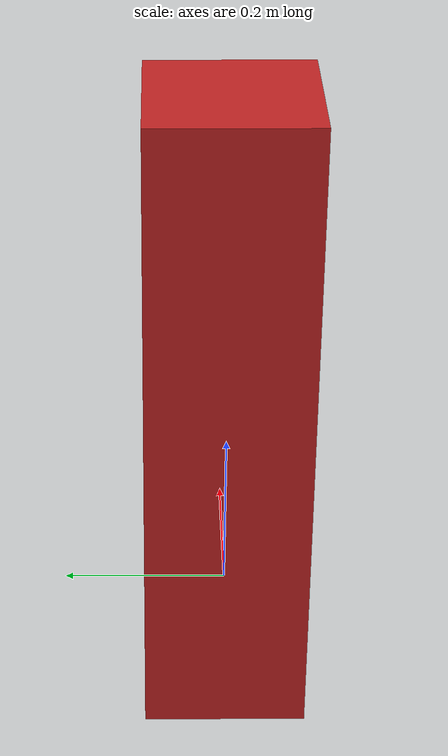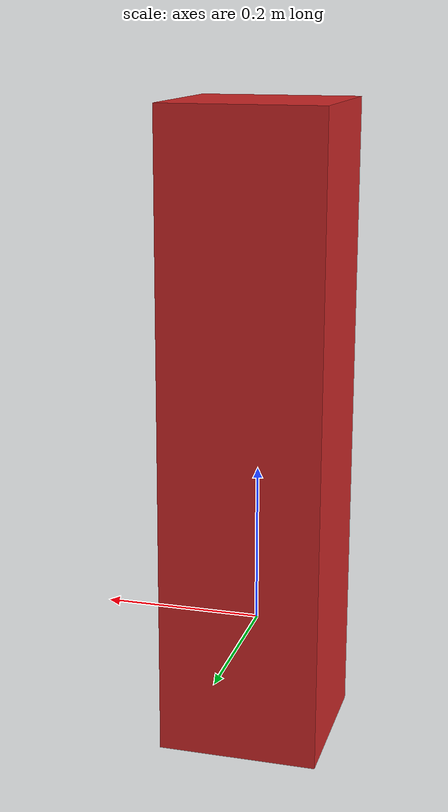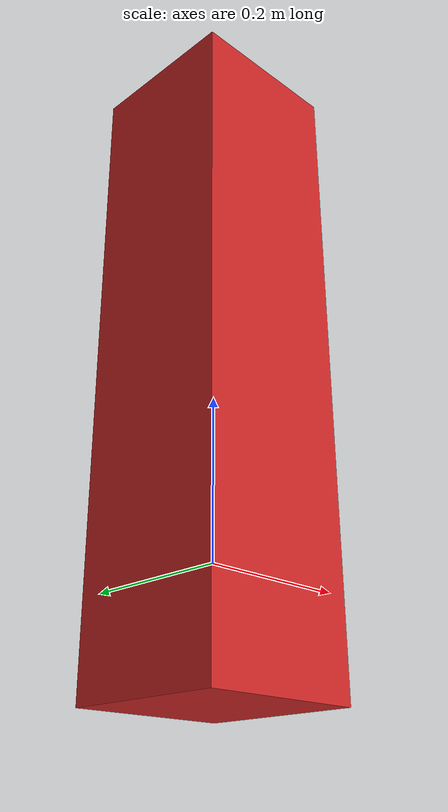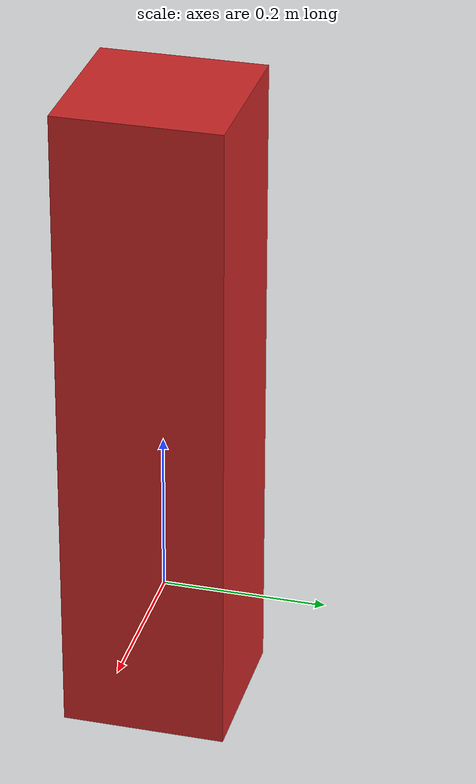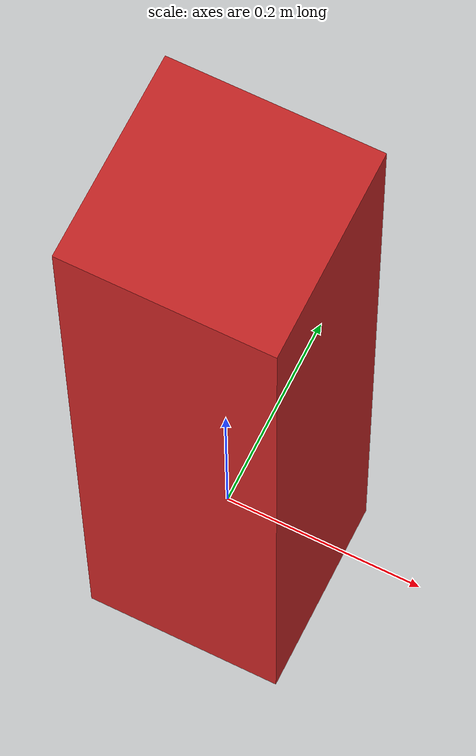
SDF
<sdf version='1.6'>
<model name='box_02_02_05'>
  <static>false</static>
  <pose frame=''>0 0 0 0 -0 0</pose>
  <link name='link'>
    <pose frame=''>0 0 0.25 0 -0 0</pose>
    <inertial>
      <mass>100</mass>
      <inertia>
        <ixx>0.166667</ixx>
        <ixy>0</ixy>
        <ixz>0</ixz>
        <iyy>0.166667</iyy>
        <iyz>0</iyz>
        <izz>0.166667</izz>
      </inertia>
    </inertial>
    <collision name='collision'>
      <geometry>
        <box>
          <size>.2 .2 .8</size>
        </box>
      </geometry>
      <max_contacts>10</max_contacts>
      <surface>
        <contact>
          <ode/>
        </contact>
        <bounce/>
        <friction>
          <torsional>
            <ode/>
          </torsional>
          <ode/>
        </friction>
      </surface>
    </collision>
    <visual name='visual'>
      <geometry>
        <box>
          <size>.2 .2 .8</size>
        </box>
      </geometry>
      <material>
        <script>
          <name>Gazebo/Red</name>
          <uri>file://media/materials/scripts/gazebo.material</uri>
        </script>
      </material>
    </visual>
    <self_collide>0</self_collide>
    <kinematic>0</kinematic>
  </link>
</model>
</sdf>

<!-- Spawn with the following command: rosrun gazebo_ros spawn_model -sdf -file /home/justin/catkin_ws/src/navigation_test/configs/models/pole_005_06.sdf -model pole -x 1
 -->
